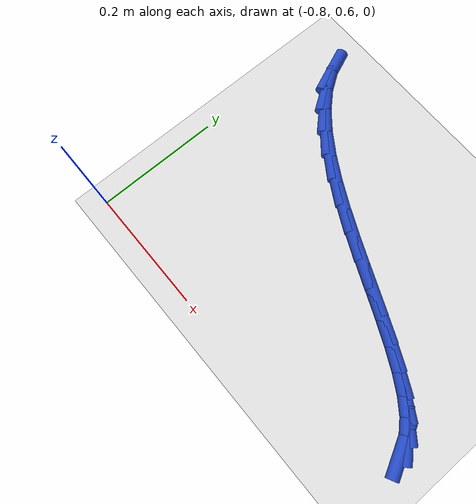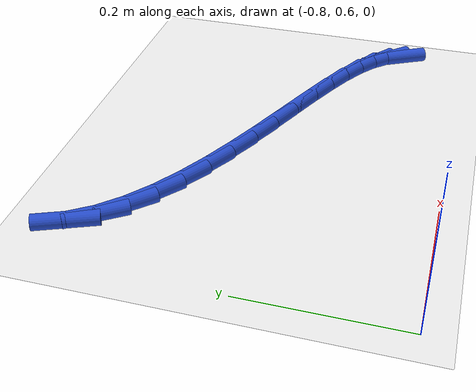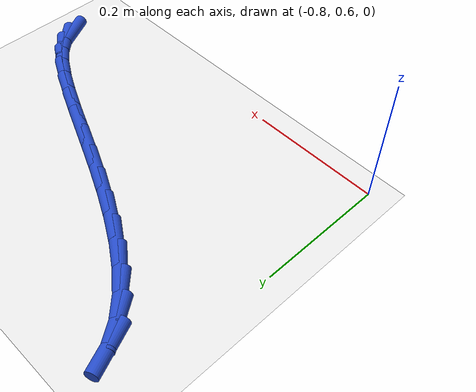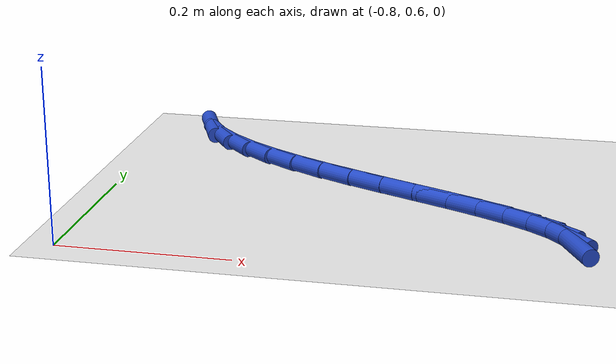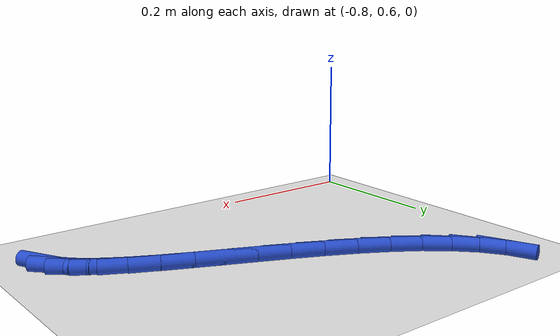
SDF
<sdf version="1.6">
 <world name="default">
  <model name="ground_plane">
   <static>1</static>
   <link name="link">
    <collision name="collision">
     <geometry><plane><normal>0 0 1</normal><size>100 100</size></plane></geometry>
     <surface><friction><ode><mu>100</mu><mu2>50</mu2></ode></friction></surface>
    </collision>
    <visual name="visual">
     <cast_shadows>0</cast_shadows>
     <geometry><plane><normal>0 0 1</normal><size>100 100</size></plane></geometry>
     <material>
      <script><uri>file://media/materials/scripts/gazebo.material</uri><name>Gazebo/WhiteGlow</name></script>
     </material>
    </visual>
   </link>
  </model>
  <model name="line">
   <link name="link_33">
    <pose>-0.24804787297993106 0.695053169616392 0.01 0 1.57 -1.0878005230337855</pose>
    <collision name="collision">
     <geometry><cylinder><radius>0.01</radius><length>0.08</length></cylinder></geometry>
    </collision>
    <visual name="visual">
     <material>
      <script><name>Gazebo/Blue</name><uri>file://media/materials/scripts/gazebo.material</uri></script>
     </material>
     <geometry><cylinder><radius>0.01</radius><length>0.08</length></cylinder></geometry>
    </visual>
   </link>
   <link name="link_34">
    <pose>-0.25783676665433547 0.7137191400962415 0.01 0 1.57 -0.8125861901919864</pose>
    <collision name="collision">
     <geometry><cylinder><radius>0.01</radius><length>0.08</length></cylinder></geometry>
    </collision>
    <visual name="visual">
     <material>
      <script><name>Gazebo/Blue</name><uri>file://media/materials/scripts/gazebo.material</uri></script>
     </material>
     <geometry><cylinder><radius>0.01</radius><length>0.08</length></cylinder></geometry>
    </visual>
   </link>
   <link name="link_35">
    <pose>-0.2747456437343098 0.7315733909787782 0.01 0 1.57 -0.6413767370380604</pose>
    <collision name="collision">
     <geometry><cylinder><radius>0.01</radius><length>0.08</length></cylinder></geometry>
    </collision>
    <visual name="visual">
     <material>
      <script><name>Gazebo/Blue</name><uri>file://media/materials/scripts/gazebo.material</uri></script>
     </material>
     <geometry><cylinder><radius>0.01</radius><length>0.08</length></cylinder></geometry>
    </visual>
   </link>
   <link name="link_36">
    <pose>-0.29785034661798454 0.7488253478706716 0.01 0 1.57 -0.5360878505223857</pose>
    <collision name="collision">
     <geometry><cylinder><radius>0.01</radius><length>0.08</length></cylinder></geometry>
    </collision>
    <visual name="visual">
     <material>
      <script><name>Gazebo/Blue</name><uri>file://media/materials/scripts/gazebo.material</uri></script>
     </material>
     <geometry><cylinder><radius>0.01</radius><length>0.08</length></cylinder></geometry>
    </visual>
   </link>
   <link name="link_37">
    <pose>-0.32622671770348993 0.7656844363785906 0.01 0 1.57 -0.4712873012194078</pose>
    <collision name="collision">
     <geometry><cylinder><radius>0.01</radius><length>0.08</length></cylinder></geometry>
    </collision>
    <visual name="visual">
     <material>
      <script><name>Gazebo/Blue</name><uri>file://media/materials/scripts/gazebo.material</uri></script>
     </material>
     <geometry><cylinder><radius>0.01</radius><length>0.08</length></cylinder></geometry>
    </visual>
   </link>
   <link name="link_38">
    <pose>-0.35895059938895635 0.7823600821092045 0.01 0 1.57 -0.43282481333549855</pose>
    <collision name="collision">
     <geometry><cylinder><radius>0.01</radius><length>0.08</length></cylinder></geometry>
    </collision>
    <visual name="visual">
     <material>
      <script><name>Gazebo/Blue</name><uri>file://media/materials/scripts/gazebo.material</uri></script>
     </material>
     <geometry><cylinder><radius>0.01</radius><length>0.08</length></cylinder></geometry>
    </visual>
   </link>
   <link name="link_39">
    <pose>-0.395097834072514 0.7990617106691822 0.01 0 1.57 -0.41304496454070505</pose>
    <collision name="collision">
     <geometry><cylinder><radius>0.01</radius><length>0.08</length></cylinder></geometry>
    </collision>
    <visual name="visual">
     <material>
      <script><name>Gazebo/Blue</name><uri>file://media/materials/scripts/gazebo.material</uri></script>
     </material>
     <geometry><cylinder><radius>0.01</radius><length>0.08</length></cylinder></geometry>
    </visual>
   </link>
   <link name="link_40">
    <pose>-0.43374426415229317 0.8159987476651931 0.01 0 1.57 -0.4079145702388015</pose>
    <collision name="collision">
     <geometry><cylinder><radius>0.01</radius><length>0.08</length></cylinder></geometry>
    </collision>
    <visual name="visual">
     <material>
      <script><name>Gazebo/Blue</name><uri>file://media/materials/scripts/gazebo.material</uri></script>
     </material>
     <geometry><cylinder><radius>0.01</radius><length>0.08</length></cylinder></geometry>
    </visual>
   </link>
   <link name="link_41">
    <pose>-0.47396573202642484 0.8333806187039067 0.01 0 1.57 -0.4155783640052848</pose>
    <collision name="collision">
     <geometry><cylinder><radius>0.01</radius><length>0.08</length></cylinder></geometry>
    </collision>
    <visual name="visual">
     <material>
      <script><name>Gazebo/Blue</name><uri>file://media/materials/scripts/gazebo.material</uri></script>
     </material>
     <geometry><cylinder><radius>0.01</radius><length>0.08</length></cylinder></geometry>
    </visual>
   </link>
   <link name="link_42">
    <pose>-0.5148380800930389 0.8514167493919916 0.01 0 1.57 -0.4356879050753388</pose>
    <collision name="collision">
     <geometry><cylinder><radius>0.01</radius><length>0.08</length></cylinder></geometry>
    </collision>
    <visual name="visual">
     <material>
      <script><name>Gazebo/Blue</name><uri>file://media/materials/scripts/gazebo.material</uri></script>
     </material>
     <geometry><cylinder><radius>0.01</radius><length>0.08</length></cylinder></geometry>
    </visual>
   </link>
   <link name="link_43">
    <pose>-0.5554371507502659 0.8703165653361173 0.01 0 1.57 -0.46915715959658744</pose>
    <collision name="collision">
     <geometry><cylinder><radius>0.01</radius><length>0.08</length></cylinder></geometry>
    </collision>
    <visual name="visual">
     <material>
      <script><name>Gazebo/Blue</name><uri>file://media/materials/scripts/gazebo.material</uri></script>
     </material>
     <geometry><cylinder><radius>0.01</radius><length>0.08</length></cylinder></geometry>
    </visual>
   </link>
   <link name="link_44">
    <pose>-0.5948387863962358 0.8902894921429527 0.01 0 1.57 -0.5181867321169078</pose>
    <collision name="collision">
     <geometry><cylinder><radius>0.01</radius><length>0.08</length></cylinder></geometry>
    </collision>
    <visual name="visual">
     <material>
      <script><name>Gazebo/Blue</name><uri>file://media/materials/scripts/gazebo.material</uri></script>
     </material>
     <geometry><cylinder><radius>0.01</radius><length>0.08</length></cylinder></geometry>
    </visual>
   </link>
   <link name="link_45">
    <pose>-0.6321188294290794 0.9115449554191674 0.01 0 1.57 -0.5864755261471498</pose>
    <collision name="collision">
     <geometry><cylinder><radius>0.01</radius><length>0.08</length></cylinder></geometry>
    </collision>
    <visual name="visual">
     <material>
      <script><name>Gazebo/Blue</name><uri>file://media/materials/scripts/gazebo.material</uri></script>
     </material>
     <geometry><cylinder><radius>0.01</radius><length>0.08</length></cylinder></geometry>
    </visual>
   </link>
   <link name="link_46">
    <pose>-0.6663531222469266 0.9342923807714302 0.01 0 1.57 -0.6795038261500086</pose>
    <collision name="collision">
     <geometry><cylinder><radius>0.01</radius><length>0.08</length></cylinder></geometry>
    </collision>
    <visual name="visual">
     <material>
      <script><name>Gazebo/Blue</name><uri>file://media/materials/scripts/gazebo.material</uri></script>
     </material>
     <geometry><cylinder><radius>0.01</radius><length>0.08</length></cylinder></geometry>
    </visual>
   </link>
   <link name="link_47">
    <pose>-0.696617507247908 0.9587411938064101 0.01 0 1.57 -0.8045202819315923</pose>
    <collision name="collision">
     <geometry><cylinder><radius>0.01</radius><length>0.08</length></cylinder></geometry>
    </collision>
    <visual name="visual">
     <material>
      <script><name>Gazebo/Blue</name><uri>file://media/materials/scripts/gazebo.material</uri></script>
     </material>
     <geometry><cylinder><radius>0.01</radius><length>0.08</length></cylinder></geometry>
    </visual>
   </link>
   <link name="link_48">
    <pose>-0.7219878268301544 0.9851008201307769 0.01 0 1.57 -0.9691723750278376</pose>
    <collision name="collision">
     <geometry><cylinder><radius>0.01</radius><length>0.08</length></cylinder></geometry>
    </collision>
    <visual name="visual">
     <material>
      <script><name>Gazebo/Blue</name><uri>file://media/materials/scripts/gazebo.material</uri></script>
     </material>
     <geometry><cylinder><radius>0.01</radius><length>0.08</length></cylinder></geometry>
    </visual>
   </link>
   <link name="link_49">
    <pose>-0.7415399233917956 1.0135806853511995 0.01 0 1.57 -1.176768428785357</pose>
    <collision name="collision">
     <geometry><cylinder><radius>0.01</radius><length>0.08</length></cylinder></geometry>
    </collision>
    <visual name="visual">
     <material>
      <script><name>Gazebo/Blue</name><uri>file://media/materials/scripts/gazebo.material</uri></script>
     </material>
     <geometry><cylinder><radius>0.01</radius><length>0.08</length></cylinder></geometry>
    </visual>
   </link>
  </model>
 </world>
</sdf>
